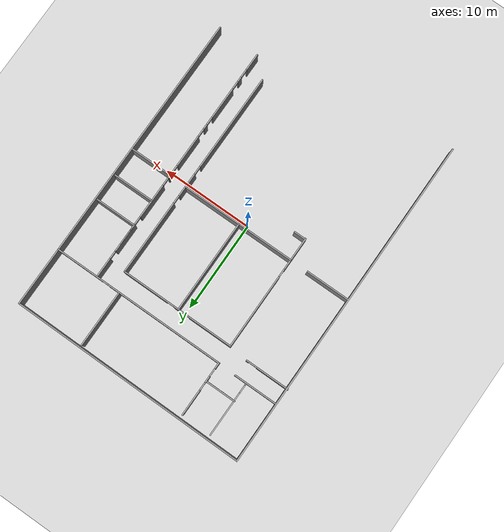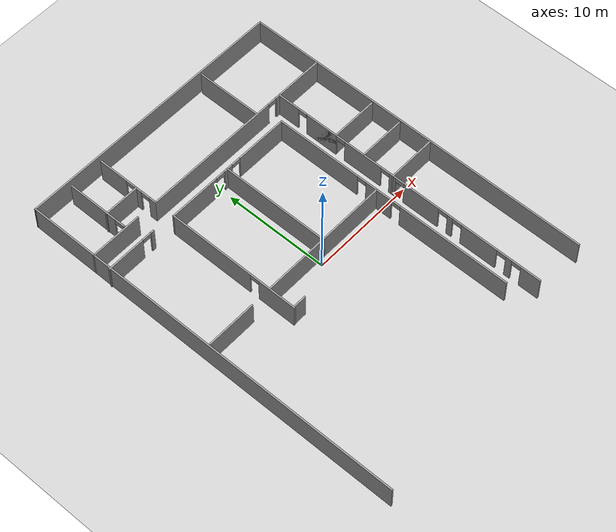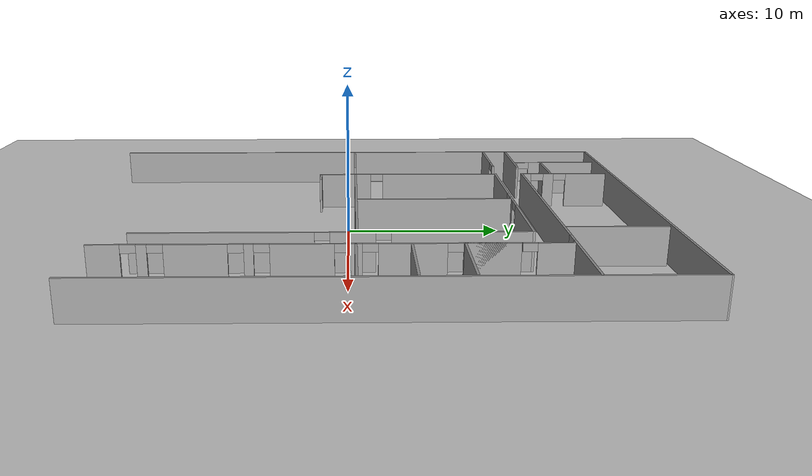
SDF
<sdf version="1.7">
 <world name="default">
  <model name="ground_plane">
   <static>1</static>
   <link name="link">
    <collision name="collision">
     <geometry><plane><normal>0 0 1</normal><size>100 100</size></plane></geometry>
     <surface><friction><ode><mu>100</mu><mu2>50</mu2></ode></friction></surface>
    </collision>
    <visual name="visual">
     <cast_shadows>0</cast_shadows>
     <geometry><plane><normal>0 0 1</normal><size>100 100</size></plane></geometry>
     <material>
      <script><uri>file://media/materials/scripts/gazebo.material</uri><name>Gazebo/Grey</name></script>
     </material>
    </visual>
   </link>
  </model>
  <model name="GGB_1_floor">
   <pose>0.630572 -15.6046 0 0 -0 0</pose>
   <link name="Wall_0">
    <collision name="Wall_0_Collision">
     <geometry><box><size>37.5 0.15 2.5</size></box></geometry>
     <pose>0 0 1.25 0 -0 0</pose>
    </collision>
    <visual name="Wall_0_Visual">
     <pose>0 0 1.25 0 -0 0</pose>
     <geometry><box><size>37.5 0.15 2.5</size></box></geometry>
     <material>
      <script><uri>file://media/materials/scripts/gazebo.material</uri><name>Gazebo/Grey</name></script>
      <ambient>1 1 1 1</ambient>
     </material>
     <meta><layer>0</layer></meta>
    </visual>
    <pose>-13.0548 16.4245 0 0 -0 -1.5708</pose>
   </link>
   <link name="Wall_12">
    <pose>-6.20681 31.4888 0 0 -0 -1.5708</pose>
    <visual name="Wall_12_Visual_0">
     <pose>-1.65393 0 1.25 0 -0 0</pose>
     <geometry><box><size>2.94215 0.15 2.5</size></box></geometry>
     <material>
      <script><uri>file://media/materials/scripts/gazebo.material</uri><name>Gazebo/Grey</name></script>
      <ambient>1 1 1 1</ambient>
     </material>
     <meta><layer>0</layer></meta>
    </visual>
    <collision name="Wall_12_Collision_0">
     <geometry><box><size>2.94215 0.15 2.5</size></box></geometry>
     <pose>-1.65393 0 1.25 0 -0 0</pose>
    </collision>
    <visual name="Wall_12_Visual_1">
     <pose>1.09644 0 1.25 0 -0 0</pose>
     <geometry><box><size>0.758577 0.15 2.5</size></box></geometry>
     <material>
      <script><uri>file://media/materials/scripts/gazebo.material</uri><name>Gazebo/Grey</name></script>
      <ambient>1 1 1 1</ambient>
     </material>
     <meta><layer>0</layer></meta>
    </visual>
    <collision name="Wall_12_Collision_1">
     <geometry><box><size>0.758577 0.15 2.5</size></box></geometry>
     <pose>1.09644 0 1.25 0 -0 0</pose>
    </collision>
    <visual name="Wall_12_Visual_2">
     <pose>2.75036 0 1.25 0 -0 0</pose>
     <geometry><box><size>0.749272 0.15 2.5</size></box></geometry>
     <material>
      <script><uri>file://media/materials/scripts/gazebo.material</uri><name>Gazebo/Grey</name></script>
      <ambient>1 1 1 1</ambient>
     </material>
     <meta><layer>0</layer></meta>
    </visual>
    <collision name="Wall_12_Collision_2">
     <geometry><box><size>0.749272 0.15 2.5</size></box></geometry>
     <pose>2.75036 0 1.25 0 -0 0</pose>
    </collision>
    <visual name="Wall_12_Visual_3">
     <pose>0.267151 0 2.25 0 -0 0</pose>
     <geometry><box><size>0.9 0.15 0.5</size></box></geometry>
     <material>
      <script><uri>file://media/materials/scripts/gazebo.material</uri><name>Gazebo/Grey</name></script>
      <ambient>1 1 1 1</ambient>
     </material>
     <meta><layer>0</layer></meta>
    </visual>
    <collision name="Wall_12_Collision_3">
     <geometry><box><size>0.9 0.15 0.5</size></box></geometry>
     <pose>0.267151 0 2.25 0 -0 0</pose>
    </collision>
    <visual name="Wall_12_Visual_4">
     <pose>1.92573 0 2.25 0 -0 0</pose>
     <geometry><box><size>0.9 0.15 0.5</size></box></geometry>
     <material>
      <script><uri>file://media/materials/scripts/gazebo.material</uri><name>Gazebo/Grey</name></script>
      <ambient>1 1 1 1</ambient>
     </material>
     <meta><layer>0</layer></meta>
    </visual>
    <collision name="Wall_12_Collision_4">
     <geometry><box><size>0.9 0.15 0.5</size></box></geometry>
     <pose>1.92573 0 2.25 0 -0 0</pose>
    </collision>
   </link>
   <link name="Wall_13">
    <pose>3.46819 28.4388 0 0 -0 0</pose>
    <visual name="Wall_13_Visual_0">
     <pose>-3.06133 0 1.25 0 -0 0</pose>
     <geometry><box><size>13.3773 0.15 2.5</size></box></geometry>
     <material>
      <script><uri>file://media/materials/scripts/gazebo.material</uri><name>Gazebo/Grey</name></script>
      <ambient>1 1 1 1</ambient>
     </material>
     <meta><layer>0</layer></meta>
    </visual>
    <collision name="Wall_13_Collision_0">
     <geometry><box><size>13.3773 0.15 2.5</size></box></geometry>
     <pose>-3.06133 0 1.25 0 -0 0</pose>
    </collision>
    <visual name="Wall_13_Visual_1">
     <pose>7.13867 0 1.25 0 -0 0</pose>
     <geometry><box><size>5.22265 0.15 2.5</size></box></geometry>
     <material>
      <script><uri>file://media/materials/scripts/gazebo.material</uri><name>Gazebo/Grey</name></script>
      <ambient>1 1 1 1</ambient>
     </material>
     <meta><layer>0</layer></meta>
    </visual>
    <collision name="Wall_13_Collision_1">
     <geometry><box><size>5.22265 0.15 2.5</size></box></geometry>
     <pose>7.13867 0 1.25 0 -0 0</pose>
    </collision>
    <visual name="Wall_13_Visual_2">
     <pose>4.07735 0 2.25 0 -0 0</pose>
     <geometry><box><size>0.9 0.15 0.5</size></box></geometry>
     <material>
      <script><uri>file://media/materials/scripts/gazebo.material</uri><name>Gazebo/Grey</name></script>
      <ambient>1 1 1 1</ambient>
     </material>
     <meta><layer>0</layer></meta>
    </visual>
    <collision name="Wall_13_Collision_2">
     <geometry><box><size>0.9 0.15 0.5</size></box></geometry>
     <pose>4.07735 0 2.25 0 -0 0</pose>
    </collision>
   </link>
   <link name="Wall_15">
    <pose>8.45287 14.711 0 0 -0 -1.5708</pose>
    <visual name="Wall_15_Visual_0">
     <pose>-12.6394 0 1.25 0 -0 0</pose>
     <geometry><box><size>2.22115 0.15 2.5</size></box></geometry>
     <material>
      <script><uri>file://media/materials/scripts/gazebo.material</uri><name>Gazebo/Grey</name></script>
      <ambient>1 1 1 1</ambient>
     </material>
     <meta><layer>0</layer></meta>
    </visual>
    <collision name="Wall_15_Collision_0">
     <geometry><box><size>2.22115 0.15 2.5</size></box></geometry>
     <pose>-12.6394 0 1.25 0 -0 0</pose>
    </collision>
    <visual name="Wall_15_Visual_1">
     <pose>-9.0033 0 1.25 0 -0 0</pose>
     <geometry><box><size>3.25109 0.15 2.5</size></box></geometry>
     <material>
      <script><uri>file://media/materials/scripts/gazebo.material</uri><name>Gazebo/Grey</name></script>
      <ambient>1 1 1 1</ambient>
     </material>
     <meta><layer>0</layer></meta>
    </visual>
    <collision name="Wall_15_Collision_1">
     <geometry><box><size>3.25109 0.15 2.5</size></box></geometry>
     <pose>-9.0033 0 1.25 0 -0 0</pose>
    </collision>
    <visual name="Wall_15_Visual_2">
     <pose>-8.58115 0 1.25 0 -0 0</pose>
     <geometry><box><size>2.4068 0.15 2.5</size></box></geometry>
     <material>
      <script><uri>file://media/materials/scripts/gazebo.material</uri><name>Gazebo/Grey</name></script>
      <ambient>1 1 1 1</ambient>
     </material>
     <meta><layer>0</layer></meta>
    </visual>
    <collision name="Wall_15_Collision_2">
     <geometry><box><size>2.4068 0.15 2.5</size></box></geometry>
     <pose>-8.58115 0 1.25 0 -0 0</pose>
    </collision>
    <visual name="Wall_15_Visual_3">
     <pose>-4.5356 0 1.25 0 -0 0</pose>
     <geometry><box><size>3.88431 0.15 2.5</size></box></geometry>
     <material>
      <script><uri>file://media/materials/scripts/gazebo.material</uri><name>Gazebo/Grey</name></script>
      <ambient>1 1 1 1</ambient>
     </material>
     <meta><layer>0</layer></meta>
    </visual>
    <collision name="Wall_15_Collision_3">
     <geometry><box><size>3.88431 0.15 2.5</size></box></geometry>
     <pose>-4.5356 0 1.25 0 -0 0</pose>
    </collision>
    <visual name="Wall_15_Visual_4">
     <pose>-1.36951 0 1.25 0 -0 0</pose>
     <geometry><box><size>0.647867 0.15 2.5</size></box></geometry>
     <material>
      <script><uri>file://media/materials/scripts/gazebo.material</uri><name>Gazebo/Grey</name></script>
      <ambient>1 1 1 1</ambient>
     </material>
     <meta><layer>0</layer></meta>
    </visual>
    <collision name="Wall_15_Collision_4">
     <geometry><box><size>0.647867 0.15 2.5</size></box></geometry>
     <pose>-1.36951 0 1.25 0 -0 0</pose>
    </collision>
    <visual name="Wall_15_Visual_5">
     <pose>1.66587 0 1.25 0 -0 0</pose>
     <geometry><box><size>3.6229 0.15 2.5</size></box></geometry>
     <material>
      <script><uri>file://media/materials/scripts/gazebo.material</uri><name>Gazebo/Grey</name></script>
      <ambient>1 1 1 1</ambient>
     </material>
     <meta><layer>0</layer></meta>
    </visual>
    <collision name="Wall_15_Collision_5">
     <geometry><box><size>3.6229 0.15 2.5</size></box></geometry>
     <pose>1.66587 0 1.25 0 -0 0</pose>
    </collision>
    <visual name="Wall_15_Visual_6">
     <pose>4.64961 0 1.25 0 -0 0</pose>
     <geometry><box><size>0.544565 0.15 2.5</size></box></geometry>
     <material>
      <script><uri>file://media/materials/scripts/gazebo.material</uri><name>Gazebo/Grey</name></script>
      <ambient>1 1 1 1</ambient>
     </material>
     <meta><layer>0</layer></meta>
    </visual>
    <collision name="Wall_15_Collision_6">
     <geometry><box><size>0.544565 0.15 2.5</size></box></geometry>
     <pose>4.64961 0 1.25 0 -0 0</pose>
    </collision>
    <visual name="Wall_15_Visual_7">
     <pose>7.61899 0 1.25 0 -0 0</pose>
     <geometry><box><size>3.59421 0.15 2.5</size></box></geometry>
     <material>
      <script><uri>file://media/materials/scripts/gazebo.material</uri><name>Gazebo/Grey</name></script>
      <ambient>1 1 1 1</ambient>
     </material>
     <meta><layer>0</layer></meta>
    </visual>
    <collision name="Wall_15_Collision_7">
     <geometry><box><size>3.59421 0.15 2.5</size></box></geometry>
     <pose>7.61899 0 1.25 0 -0 0</pose>
    </collision>
    <visual name="Wall_15_Visual_8">
     <pose>10.6151 0 1.25 0 -0 0</pose>
     <geometry><box><size>0.59807 0.15 2.5</size></box></geometry>
     <material>
      <script><uri>file://media/materials/scripts/gazebo.material</uri><name>Gazebo/Grey</name></script>
      <ambient>1 1 1 1</ambient>
     </material>
     <meta><layer>0</layer></meta>
    </visual>
    <collision name="Wall_15_Collision_8">
     <geometry><box><size>0.59807 0.15 2.5</size></box></geometry>
     <pose>10.6151 0 1.25 0 -0 0</pose>
    </collision>
    <visual name="Wall_15_Visual_9">
     <pose>12.7821 0 1.25 0 -0 0</pose>
     <geometry><box><size>1.93583 0.15 2.5</size></box></geometry>
     <material>
      <script><uri>file://media/materials/scripts/gazebo.material</uri><name>Gazebo/Grey</name></script>
      <ambient>1 1 1 1</ambient>
     </material>
     <meta><layer>0</layer></meta>
    </visual>
    <collision name="Wall_15_Collision_9">
     <geometry><box><size>1.93583 0.15 2.5</size></box></geometry>
     <pose>12.7821 0 1.25 0 -0 0</pose>
    </collision>
    <visual name="Wall_15_Visual_10">
     <pose>-11.1067 0 2.25 0 -0 0</pose>
     <geometry><box><size>0.844292 0.15 0.5</size></box></geometry>
     <material>
      <script><uri>file://media/materials/scripts/gazebo.material</uri><name>Gazebo/Grey</name></script>
      <ambient>1 1 1 1</ambient>
     </material>
     <meta><layer>0</layer></meta>
    </visual>
    <collision name="Wall_15_Collision_10">
     <geometry><box><size>0.844292 0.15 0.5</size></box></geometry>
     <pose>-11.1067 0 2.25 0 -0 0</pose>
    </collision>
    <visual name="Wall_15_Visual_11">
     <pose>-6.92775 0 2.25 0 -0 0</pose>
     <geometry><box><size>0.9 0.15 0.5</size></box></geometry>
     <material>
      <script><uri>file://media/materials/scripts/gazebo.material</uri><name>Gazebo/Grey</name></script>
      <ambient>1 1 1 1</ambient>
     </material>
     <meta><layer>0</layer></meta>
    </visual>
    <collision name="Wall_15_Collision_11">
     <geometry><box><size>0.9 0.15 0.5</size></box></geometry>
     <pose>-6.92775 0 2.25 0 -0 0</pose>
    </collision>
    <visual name="Wall_15_Visual_12">
     <pose>-6.92775 0 2.25 0 -0 0</pose>
     <geometry><box><size>0.9 0.15 0.5</size></box></geometry>
     <material>
      <script><uri>file://media/materials/scripts/gazebo.material</uri><name>Gazebo/Grey</name></script>
      <ambient>1 1 1 1</ambient>
     </material>
     <meta><layer>0</layer></meta>
    </visual>
    <collision name="Wall_15_Collision_12">
     <geometry><box><size>0.9 0.15 0.5</size></box></geometry>
     <pose>-6.92775 0 2.25 0 -0 0</pose>
    </collision>
    <visual name="Wall_15_Visual_13">
     <pose>-2.14344 0 2.25 0 -0 0</pose>
     <geometry><box><size>0.9 0.15 0.5</size></box></geometry>
     <material>
      <script><uri>file://media/materials/scripts/gazebo.material</uri><name>Gazebo/Grey</name></script>
      <ambient>1 1 1 1</ambient>
     </material>
     <meta><layer>0</layer></meta>
    </visual>
    <collision name="Wall_15_Collision_13">
     <geometry><box><size>0.9 0.15 0.5</size></box></geometry>
     <pose>-2.14344 0 2.25 0 -0 0</pose>
    </collision>
    <visual name="Wall_15_Visual_14">
     <pose>-0.595573 0 2.25 0 -0 0</pose>
     <geometry><box><size>0.9 0.15 0.5</size></box></geometry>
     <material>
      <script><uri>file://media/materials/scripts/gazebo.material</uri><name>Gazebo/Grey</name></script>
      <ambient>1 1 1 1</ambient>
     </material>
     <meta><layer>0</layer></meta>
    </visual>
    <collision name="Wall_15_Collision_14">
     <geometry><box><size>0.9 0.15 0.5</size></box></geometry>
     <pose>-0.595573 0 2.25 0 -0 0</pose>
    </collision>
    <visual name="Wall_15_Visual_15">
     <pose>3.92732 0 2.25 0 -0 0</pose>
     <geometry><box><size>0.9 0.15 0.5</size></box></geometry>
     <material>
      <script><uri>file://media/materials/scripts/gazebo.material</uri><name>Gazebo/Grey</name></script>
      <ambient>1 1 1 1</ambient>
     </material>
     <meta><layer>0</layer></meta>
    </visual>
    <collision name="Wall_15_Collision_15">
     <geometry><box><size>0.9 0.15 0.5</size></box></geometry>
     <pose>3.92732 0 2.25 0 -0 0</pose>
    </collision>
    <visual name="Wall_15_Visual_16">
     <pose>5.37189 0 2.25 0 -0 0</pose>
     <geometry><box><size>0.9 0.15 0.5</size></box></geometry>
     <material>
      <script><uri>file://media/materials/scripts/gazebo.material</uri><name>Gazebo/Grey</name></script>
      <ambient>1 1 1 1</ambient>
     </material>
     <meta><layer>0</layer></meta>
    </visual>
    <collision name="Wall_15_Collision_16">
     <geometry><box><size>0.9 0.15 0.5</size></box></geometry>
     <pose>5.37189 0 2.25 0 -0 0</pose>
    </collision>
    <visual name="Wall_15_Visual_17">
     <pose>9.8661 0 2.25 0 -0 0</pose>
     <geometry><box><size>0.9 0.15 0.5</size></box></geometry>
     <material>
      <script><uri>file://media/materials/scripts/gazebo.material</uri><name>Gazebo/Grey</name></script>
      <ambient>1 1 1 1</ambient>
     </material>
     <meta><layer>0</layer></meta>
    </visual>
    <collision name="Wall_15_Collision_17">
     <geometry><box><size>0.9 0.15 0.5</size></box></geometry>
     <pose>9.8661 0 2.25 0 -0 0</pose>
    </collision>
    <visual name="Wall_15_Visual_18">
     <pose>11.3642 0 2.25 0 -0 0</pose>
     <geometry><box><size>0.9 0.15 0.5</size></box></geometry>
     <material>
      <script><uri>file://media/materials/scripts/gazebo.material</uri><name>Gazebo/Grey</name></script>
      <ambient>1 1 1 1</ambient>
     </material>
     <meta><layer>0</layer></meta>
    </visual>
    <collision name="Wall_15_Collision_18">
     <geometry><box><size>0.9 0.15 0.5</size></box></geometry>
     <pose>11.3642 0 2.25 0 -0 0</pose>
    </collision>
   </link>
   <link name="Wall_17">
    <pose>0.180575 26.4599 0 0 -0 0</pose>
    <visual name="Wall_17_Visual_0">
     <pose>-3.91897 0 1.25 0 -0 0</pose>
     <geometry><box><size>5.02336 0.15 2.5</size></box></geometry>
     <material>
      <script><uri>file://media/materials/scripts/gazebo.material</uri><name>Gazebo/Grey</name></script>
      <ambient>1 1 1 1</ambient>
     </material>
     <meta><layer>0</layer></meta>
    </visual>
    <collision name="Wall_17_Collision_0">
     <geometry><box><size>5.02336 0.15 2.5</size></box></geometry>
     <pose>-3.91897 0 1.25 0 -0 0</pose>
    </collision>
    <visual name="Wall_17_Visual_1">
     <pose>-0.057574 0 1.25 0 -0 0</pose>
     <geometry><box><size>0.899438 0.15 2.5</size></box></geometry>
     <material>
      <script><uri>file://media/materials/scripts/gazebo.material</uri><name>Gazebo/Grey</name></script>
      <ambient>1 1 1 1</ambient>
     </material>
     <meta><layer>0</layer></meta>
    </visual>
    <collision name="Wall_17_Collision_1">
     <geometry><box><size>0.899438 0.15 2.5</size></box></geometry>
     <pose>-0.057574 0 1.25 0 -0 0</pose>
    </collision>
    <visual name="Wall_17_Visual_2">
     <pose>3.8614 0 1.25 0 -0 0</pose>
     <geometry><box><size>5.13851 0.15 2.5</size></box></geometry>
     <material>
      <script><uri>file://media/materials/scripts/gazebo.material</uri><name>Gazebo/Grey</name></script>
      <ambient>1 1 1 1</ambient>
     </material>
     <meta><layer>0</layer></meta>
    </visual>
    <collision name="Wall_17_Collision_2">
     <geometry><box><size>5.13851 0.15 2.5</size></box></geometry>
     <pose>3.8614 0 1.25 0 -0 0</pose>
    </collision>
    <visual name="Wall_17_Visual_3">
     <pose>-0.957293 0 2.25 0 -0 0</pose>
     <geometry><box><size>0.9 0.15 0.5</size></box></geometry>
     <material>
      <script><uri>file://media/materials/scripts/gazebo.material</uri><name>Gazebo/Grey</name></script>
      <ambient>1 1 1 1</ambient>
     </material>
     <meta><layer>0</layer></meta>
    </visual>
    <collision name="Wall_17_Collision_3">
     <geometry><box><size>0.9 0.15 0.5</size></box></geometry>
     <pose>-0.957293 0 2.25 0 -0 0</pose>
    </collision>
    <visual name="Wall_17_Visual_4">
     <pose>0.842145 0 2.25 0 -0 0</pose>
     <geometry><box><size>0.9 0.15 0.5</size></box></geometry>
     <material>
      <script><uri>file://media/materials/scripts/gazebo.material</uri><name>Gazebo/Grey</name></script>
      <ambient>1 1 1 1</ambient>
     </material>
     <meta><layer>0</layer></meta>
    </visual>
    <collision name="Wall_17_Collision_4">
     <geometry><box><size>0.9 0.15 0.5</size></box></geometry>
     <pose>0.842145 0 2.25 0 -0 0</pose>
    </collision>
   </link>
   <link name="Wall_18">
    <pose>6.53618 14.6599 0 0 -0 -1.5708</pose>
    <visual name="Wall_18_Visual_0">
     <pose>-7.67529 0 1.25 0 -0 0</pose>
     <geometry><box><size>8.39941 0.15 2.5</size></box></geometry>
     <material>
      <script><uri>file://media/materials/scripts/gazebo.material</uri><name>Gazebo/Grey</name></script>
      <ambient>1 1 1 1</ambient>
     </material>
     <meta><layer>0</layer></meta>
    </visual>
    <collision name="Wall_18_Collision_0">
     <geometry><box><size>8.39941 0.15 2.5</size></box></geometry>
     <pose>-7.67529 0 1.25 0 -0 0</pose>
    </collision>
    <visual name="Wall_18_Visual_1">
     <pose>-1.23325 0 1.25 0 -0 0</pose>
     <geometry><box><size>2.68467 0.15 2.5</size></box></geometry>
     <material>
      <script><uri>file://media/materials/scripts/gazebo.material</uri><name>Gazebo/Grey</name></script>
      <ambient>1 1 1 1</ambient>
     </material>
     <meta><layer>0</layer></meta>
    </visual>
    <collision name="Wall_18_Collision_1">
     <geometry><box><size>2.68467 0.15 2.5</size></box></geometry>
     <pose>-1.23325 0 1.25 0 -0 0</pose>
    </collision>
    <visual name="Wall_18_Visual_2">
     <pose>6.44204 0 1.25 0 -0 0</pose>
     <geometry><box><size>10.8659 0.15 2.5</size></box></geometry>
     <material>
      <script><uri>file://media/materials/scripts/gazebo.material</uri><name>Gazebo/Grey</name></script>
      <ambient>1 1 1 1</ambient>
     </material>
     <meta><layer>0</layer></meta>
    </visual>
    <collision name="Wall_18_Collision_2">
     <geometry><box><size>10.8659 0.15 2.5</size></box></geometry>
     <pose>6.44204 0 1.25 0 -0 0</pose>
    </collision>
    <visual name="Wall_18_Visual_3">
     <pose>-3.02559 0 2.25 0 -0 0</pose>
     <geometry><box><size>0.9 0.15 0.5</size></box></geometry>
     <material>
      <script><uri>file://media/materials/scripts/gazebo.material</uri><name>Gazebo/Grey</name></script>
      <ambient>1 1 1 1</ambient>
     </material>
     <meta><layer>0</layer></meta>
    </visual>
    <collision name="Wall_18_Collision_3">
     <geometry><box><size>0.9 0.15 0.5</size></box></geometry>
     <pose>-3.02559 0 2.25 0 -0 0</pose>
    </collision>
    <visual name="Wall_18_Visual_4">
     <pose>0.559078 0 2.25 0 -0 0</pose>
     <geometry><box><size>0.9 0.15 0.5</size></box></geometry>
     <material>
      <script><uri>file://media/materials/scripts/gazebo.material</uri><name>Gazebo/Grey</name></script>
      <ambient>1 1 1 1</ambient>
     </material>
     <meta><layer>0</layer></meta>
    </visual>
    <collision name="Wall_18_Collision_4">
     <geometry><box><size>0.9 0.15 0.5</size></box></geometry>
     <pose>0.559078 0 2.25 0 -0 0</pose>
    </collision>
   </link>
   <link name="Wall_24">
    <collision name="Wall_24_Collision">
     <geometry><box><size>1.25 0.15 2.5</size></box></geometry>
     <pose>0 0 1.25 0 -0 0</pose>
    </collision>
    <visual name="Wall_24_Visual">
     <pose>0 0 1.25 0 -0 0</pose>
     <geometry><box><size>1.25 0.15 2.5</size></box></geometry>
     <material>
      <script><uri>file://media/materials/scripts/gazebo.material</uri><name>Gazebo/Grey</name></script>
      <ambient>1 1 1 1</ambient>
     </material>
     <meta><layer>0</layer></meta>
    </visual>
    <pose>-5.47275 13.6193 0 0 -0 3.14159</pose>
   </link>
   <link name="Wall_27">
    <pose>-6.17503 20.0129 0 0 -0 1.5708</pose>
    <visual name="Wall_27_Visual_0">
     <pose>-4.6497 0 1.25 0 -0 0</pose>
     <geometry><box><size>3.74469 0.15 2.5</size></box></geometry>
     <material>
      <script><uri>file://media/materials/scripts/gazebo.material</uri><name>Gazebo/Grey</name></script>
      <ambient>1 1 1 1</ambient>
     </material>
     <meta><layer>0</layer></meta>
    </visual>
    <collision name="Wall_27_Collision_0">
     <geometry><box><size>3.74469 0.15 2.5</size></box></geometry>
     <pose>-4.6497 0 1.25 0 -0 0</pose>
    </collision>
    <visual name="Wall_27_Visual_1">
     <pose>2.32235 0 1.25 0 -0 0</pose>
     <geometry><box><size>8.39941 0.15 2.5</size></box></geometry>
     <material>
      <script><uri>file://media/materials/scripts/gazebo.material</uri><name>Gazebo/Grey</name></script>
      <ambient>1 1 1 1</ambient>
     </material>
     <meta><layer>0</layer></meta>
    </visual>
    <collision name="Wall_27_Collision_1">
     <geometry><box><size>8.39941 0.15 2.5</size></box></geometry>
     <pose>2.32235 0 1.25 0 -0 0</pose>
    </collision>
    <visual name="Wall_27_Visual_2">
     <pose>-2.32736 0 2.25 0 -0 0</pose>
     <geometry><box><size>0.9 0.15 0.5</size></box></geometry>
     <material>
      <script><uri>file://media/materials/scripts/gazebo.material</uri><name>Gazebo/Grey</name></script>
      <ambient>1 1 1 1</ambient>
     </material>
     <meta><layer>0</layer></meta>
    </visual>
    <collision name="Wall_27_Collision_2">
     <geometry><box><size>0.9 0.15 0.5</size></box></geometry>
     <pose>-2.32736 0 2.25 0 -0 0</pose>
    </collision>
   </link>
   <link name="Wall_29">
    <collision name="Wall_29_Collision">
     <geometry><box><size>10.5 0.15 2.5</size></box></geometry>
     <pose>0 0 1.25 0 -0 0</pose>
    </collision>
    <visual name="Wall_29_Visual">
     <pose>0 0 1.25 0 -0 0</pose>
     <geometry><box><size>10.5 0.15 2.5</size></box></geometry>
     <material>
      <script><uri>file://media/materials/scripts/gazebo.material</uri><name>Gazebo/Grey</name></script>
      <ambient>1 1 1 1</ambient>
     </material>
     <meta><layer>0</layer></meta>
    </visual>
    <pose>0.052981 21.2849 0 0 -0 -1.5708</pose>
   </link>
   <link name="Wall_31">
    <collision name="Wall_31_Collision">
     <geometry><box><size>12.75 0.15 2.5</size></box></geometry>
     <pose>0 0 1.25 0 -0 0</pose>
    </collision>
    <visual name="Wall_31_Visual">
     <pose>0 0 1.25 0 -0 0</pose>
     <geometry><box><size>12.75 0.15 2.5</size></box></geometry>
     <material>
      <script><uri>file://media/materials/scripts/gazebo.material</uri><name>Gazebo/Grey</name></script>
      <ambient>1 1 1 1</ambient>
     </material>
     <meta><layer>0</layer></meta>
    </visual>
    <pose>0.146691 16.1339 0 0 -0 0</pose>
   </link>
   <link name="Wall_38">
    <collision name="Wall_38_Collision">
     <geometry><box><size>4.5 0.15 2.5</size></box></geometry>
     <pose>0 0 1.25 0 -0 0</pose>
    </collision>
    <visual name="Wall_38_Visual">
     <pose>0 0 1.25 0 -0 0</pose>
     <geometry><box><size>4.5 0.15 2.5</size></box></geometry>
     <material>
      <script><uri>file://media/materials/scripts/gazebo.material</uri><name>Gazebo/Grey</name></script>
      <ambient>1 1 1 1</ambient>
     </material>
     <meta><layer>0</layer></meta>
    </visual>
    <pose>10.7143 22.1873 0 0 -0 0</pose>
   </link>
   <link name="Wall_4">
    <collision name="Wall_4_Collision">
     <geometry><box><size>34.25 0.15 2.5</size></box></geometry>
     <pose>0 0 1.25 0 -0 0</pose>
    </collision>
    <visual name="Wall_4_Visual">
     <pose>0 0 1.25 0 -0 0</pose>
     <geometry><box><size>34.25 0.15 2.5</size></box></geometry>
     <material>
      <script><uri>file://media/materials/scripts/gazebo.material</uri><name>Gazebo/Grey</name></script>
      <ambient>1 1 1 1</ambient>
     </material>
     <meta><layer>0</layer></meta>
    </visual>
    <pose>13.1452 17.8995 0 0 -0 1.5708</pose>
   </link>
   <link name="Wall_40">
    <collision name="Wall_40_Collision">
     <geometry><box><size>4.5 0.15 2.5</size></box></geometry>
     <pose>0 0 1.25 0 -0 0</pose>
    </collision>
    <visual name="Wall_40_Visual">
     <pose>0 0 1.25 0 -0 0</pose>
     <geometry><box><size>4.5 0.15 2.5</size></box></geometry>
     <material>
      <script><uri>file://media/materials/scripts/gazebo.material</uri><name>Gazebo/Grey</name></script>
      <ambient>1 1 1 1</ambient>
     </material>
     <meta><layer>0</layer></meta>
    </visual>
    <pose>10.7143 19.1951 0 0 -0 0</pose>
   </link>
   <link name="Wall_5">
    <collision name="Wall_5_Collision">
     <geometry><box><size>26.3504 0.15 2.5</size></box></geometry>
     <pose>0 0 1.25 0 -0 0</pose>
    </collision>
    <visual name="Wall_5_Visual">
     <pose>0 0 1.25 0 -0 0</pose>
     <geometry><box><size>26.3504 0.15 2.5</size></box></geometry>
     <material>
      <script><uri>file://media/materials/scripts/gazebo.material</uri><name>Gazebo/Grey</name></script>
      <ambient>1 1 1 1</ambient>
     </material>
     <meta><layer>0</layer></meta>
    </visual>
    <pose>0.045239 35.0245 0 0 -0 3.13587</pose>
   </link>
   <link name="Wall_56">
    <collision name="Wall_56_Collision">
     <geometry><box><size>4.75 0.15 2.5</size></box></geometry>
     <pose>0 0 1.25 0 -0 0</pose>
    </collision>
    <visual name="Wall_56_Visual">
     <pose>0 0 1.25 0 -0 0</pose>
     <geometry><box><size>4.75 0.15 2.5</size></box></geometry>
     <material>
      <script><uri>file://media/materials/scripts/gazebo.material</uri><name>Gazebo/Grey</name></script>
      <ambient>1 1 1 1</ambient>
     </material>
     <meta><layer>0</layer></meta>
    </visual>
    <pose>10.7473 16.0585 0 0 -0 0</pose>
   </link>
   <link name="Wall_62">
    <collision name="Wall_62_Collision">
     <geometry><box><size>6.25 0.15 2.5</size></box></geometry>
     <pose>0 0 1.25 0 -0 0</pose>
    </collision>
    <visual name="Wall_62_Visual">
     <pose>0 0 1.25 0 -0 0</pose>
     <geometry><box><size>6.25 0.15 2.5</size></box></geometry>
     <material>
      <script><uri>file://media/materials/scripts/gazebo.material</uri><name>Gazebo/Grey</name></script>
      <ambient>1 1 1 1</ambient>
     </material>
     <meta><layer>0</layer></meta>
    </visual>
    <pose>5.74135 31.6256 0 0 -0 -1.5708</pose>
   </link>
   <link name="Wall_64">
    <pose>-10.7207 26.6708 0 0 -0 0</pose>
    <visual name="Wall_64_Visual_0">
     <pose>-0.636639 0 1.25 0 -0 0</pose>
     <geometry><box><size>3.72672 0.15 2.5</size></box></geometry>
     <material>
      <script><uri>file://media/materials/scripts/gazebo.material</uri><name>Gazebo/Grey</name></script>
      <ambient>1 1 1 1</ambient>
     </material>
     <meta><layer>0</layer></meta>
    </visual>
    <collision name="Wall_64_Collision_0">
     <geometry><box><size>3.72672 0.15 2.5</size></box></geometry>
     <pose>-0.636639 0 1.25 0 -0 0</pose>
    </collision>
    <visual name="Wall_64_Visual_1">
     <pose>2.31336 0 1.25 0 -0 0</pose>
     <geometry><box><size>0.373277 0.15 2.5</size></box></geometry>
     <material>
      <script><uri>file://media/materials/scripts/gazebo.material</uri><name>Gazebo/Grey</name></script>
      <ambient>1 1 1 1</ambient>
     </material>
     <meta><layer>0</layer></meta>
    </visual>
    <collision name="Wall_64_Collision_1">
     <geometry><box><size>0.373277 0.15 2.5</size></box></geometry>
     <pose>2.31336 0 1.25 0 -0 0</pose>
    </collision>
    <visual name="Wall_64_Visual_2">
     <pose>1.67672 0 2.25 0 -0 0</pose>
     <geometry><box><size>0.9 0.15 0.5</size></box></geometry>
     <material>
      <script><uri>file://media/materials/scripts/gazebo.material</uri><name>Gazebo/Grey</name></script>
      <ambient>1 1 1 1</ambient>
     </material>
     <meta><layer>0</layer></meta>
    </visual>
    <collision name="Wall_64_Collision_2">
     <geometry><box><size>0.9 0.15 0.5</size></box></geometry>
     <pose>1.67672 0 2.25 0 -0 0</pose>
    </collision>
   </link>
   <link name="Wall_66">
    <collision name="Wall_66_Collision">
     <geometry><box><size>5 0.15 2.5</size></box></geometry>
     <pose>0 0 1.25 0 -0 0</pose>
    </collision>
    <visual name="Wall_66_Visual">
     <pose>0 0 1.25 0 -0 0</pose>
     <geometry><box><size>5 0.15 2.5</size></box></geometry>
     <material>
      <script><uri>file://media/materials/scripts/gazebo.material</uri><name>Gazebo/Grey</name></script>
      <ambient>1 1 1 1</ambient>
     </material>
     <meta><layer>0</layer></meta>
    </visual>
    <pose>-10.6281 16.1232 0 0 -0 0</pose>
   </link>
   <link name="Wall_7">
    <pose>-9.52397 31.6138 0 0 -0 -1.5708</pose>
    <visual name="Wall_7_Visual_0">
     <pose>-0.512376 0 1.25 0 -0 0</pose>
     <geometry><box><size>4.97525 0.15 2.5</size></box></geometry>
     <material>
      <script><uri>file://media/materials/scripts/gazebo.material</uri><name>Gazebo/Grey</name></script>
      <ambient>1 1 1 1</ambient>
     </material>
     <meta><layer>0</layer></meta>
    </visual>
    <collision name="Wall_7_Collision_0">
     <geometry><box><size>4.97525 0.15 2.5</size></box></geometry>
     <pose>-0.512376 0 1.25 0 -0 0</pose>
    </collision>
    <visual name="Wall_7_Visual_1">
     <pose>2.93762 0 1.25 0 -0 0</pose>
     <geometry><box><size>0.124753 0.15 2.5</size></box></geometry>
     <material>
      <script><uri>file://media/materials/scripts/gazebo.material</uri><name>Gazebo/Grey</name></script>
      <ambient>1 1 1 1</ambient>
     </material>
     <meta><layer>0</layer></meta>
    </visual>
    <collision name="Wall_7_Collision_1">
     <geometry><box><size>0.124753 0.15 2.5</size></box></geometry>
     <pose>2.93762 0 1.25 0 -0 0</pose>
    </collision>
    <visual name="Wall_7_Visual_2">
     <pose>2.42525 0 2.25 0 -0 0</pose>
     <geometry><box><size>0.9 0.15 0.5</size></box></geometry>
     <material>
      <script><uri>file://media/materials/scripts/gazebo.material</uri><name>Gazebo/Grey</name></script>
      <ambient>1 1 1 1</ambient>
     </material>
     <meta><layer>0</layer></meta>
    </visual>
    <collision name="Wall_7_Collision_2">
     <geometry><box><size>0.9 0.15 0.5</size></box></geometry>
     <pose>2.42525 0 2.25 0 -0 0</pose>
    </collision>
   </link>
   <link name="Wall_89">
    <collision name="Wall_89_Collision">
     <geometry><box><size>3.5 0.15 2.5</size></box></geometry>
     <pose>0 0 1.25 0 -0 0</pose>
    </collision>
    <visual name="Wall_89_Visual">
     <pose>0 0 1.25 0 -0 0</pose>
     <geometry><box><size>3.5 0.15 2.5</size></box></geometry>
     <material>
      <script><uri>file://media/materials/scripts/gazebo.material</uri><name>Gazebo/Grey</name></script>
      <ambient>1 1 1 1</ambient>
     </material>
     <meta><layer>0</layer></meta>
    </visual>
    <pose>-7.91748 30.5848 0 0 -0 0</pose>
   </link>
   <link name="Wall_9">
    <collision name="Wall_9_Collision">
     <geometry><box><size>5 0.15 2.5</size></box></geometry>
     <pose>0 0 1.25 0 -0 0</pose>
    </collision>
    <visual name="Wall_9_Visual">
     <pose>0 0 1.25 0 -0 0</pose>
     <geometry><box><size>5 0.15 2.5</size></box></geometry>
     <material>
      <script><uri>file://media/materials/scripts/gazebo.material</uri><name>Gazebo/Grey</name></script>
      <ambient>1 1 1 1</ambient>
     </material>
     <meta><layer>0</layer></meta>
    </visual>
    <pose>-10.6301 28.493 0 0 -0 0</pose>
   </link>
   <static>1</static>
  </model>
 </world>
</sdf>
